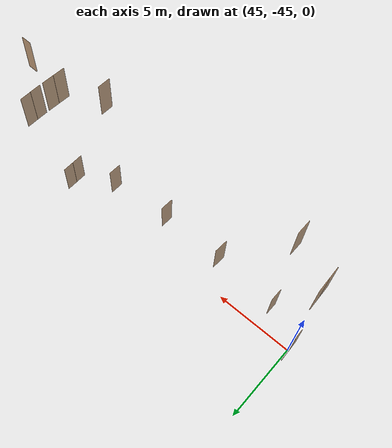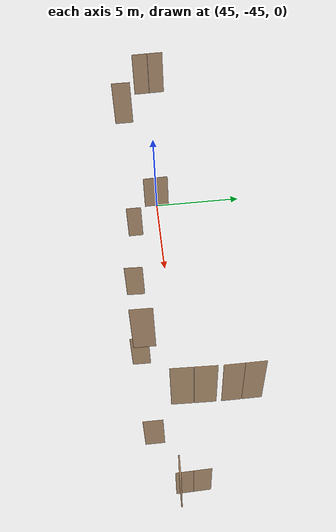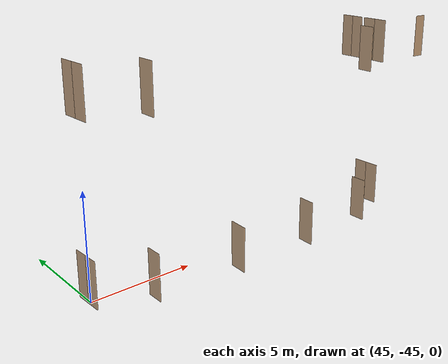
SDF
<sdf version="1.7">
 <world name="sim_world">
  <model name="bano01">
   <pose>47.27149607737123 -46.41799548548202 0.0 0 0 1.5707963267948966</pose>
   <link name="right">
    <pose>0 0 1.11 0 0 0</pose>
    <visual name="right_visual">
     <geometry><box><size>0.8199446803225976 0.03 2.2</size></box></geometry>
     <material>
      <ambient>0.5 0.25 0 0.6</ambient>
      <diffuse>0.5 0.25 0 0.6</diffuse>
      <pbr><metal><metalness>0.0</metalness></metal></pbr>
     </material>
    </visual>
    <collision name="right_collision">
     <geometry><box><size>0.8199446803225976 0.03 2.2</size></box></geometry>
     <surface><contact><collide_bitmask>0x02</collide_bitmask></contact></surface>
    </collision>
    <inertial>
     <mass>50.0</mass>
     <inertia><ixx>20.17041666666667</ixx><iyy>22.967955328288866</iyy><izz>2.805038661622195</izz></inertia>
    </inertial>
   </link>
   <joint name="right_joint" type="revolute">
    <parent>world</parent>
    <child>right</child>
    <axis><xyz>0 0 -1</xyz><limit><lower>0</lower><upper>1.57</upper></limit></axis>
    <pose>0.4149723401612988 0 0 0 0 0</pose>
   </joint>
   <plugin name="register_component" filename="libregister_component.so">
    <component name="Door">
     <v_max_door>0.5</v_max_door>
     <a_max_door>0.3</a_max_door>
     <a_nom_door>0.15</a_nom_door>
     <dx_min_door>0.01</dx_min_door>
     <f_max_door>500.0</f_max_door>
     <ros_interface>true</ros_interface>
     <door name="bano01" type="SwingDoor" left_joint_name="empty_joint" right_joint_name="right_joint"/>
    </component>
   </plugin>
  </model>
  <model name="TD0008CW">
   <pose>55.8966070053002 -46.72136061243229 0.0 0 0 1.5301015660938087</pose>
   <link name="right">
    <pose>0 0 1.11 0 0 0</pose>
    <visual name="right_visual">
     <geometry><box><size>0.8644361759346737 0.03 2.2</size></box></geometry>
     <material>
      <ambient>0.5 0.25 0 0.6</ambient>
      <diffuse>0.5 0.25 0 0.6</diffuse>
      <pbr><metal><metalness>0.0</metalness></metal></pbr>
     </material>
    </visual>
    <collision name="right_collision">
     <geometry><box><size>0.8644361759346737 0.03 2.2</size></box></geometry>
     <surface><contact><collide_bitmask>0x02</collide_bitmask></contact></surface>
    </collision>
    <inertial>
     <mass>50.0</mass>
     <inertia><ixx>20.17041666666667</ixx><iyy>23.280207926102346</iyy><izz>3.117291259435676</izz></inertia>
    </inertial>
   </link>
   <joint name="right_joint" type="revolute">
    <parent>world</parent>
    <child>right</child>
    <axis><xyz>0 0 1</xyz><limit><lower>0</lower><upper>1.57</upper></limit></axis>
    <pose>0.43721808796733685 0 0 0 0 0</pose>
   </joint>
   <plugin name="register_component" filename="libregister_component.so">
    <component name="Door">
     <v_max_door>0.5</v_max_door>
     <a_max_door>0.3</a_max_door>
     <a_nom_door>0.15</a_nom_door>
     <dx_min_door>0.01</dx_min_door>
     <f_max_door>500.0</f_max_door>
     <ros_interface>true</ros_interface>
     <door name="TD0008CW" type="SwingDoor" left_joint_name="empty_joint" right_joint_name="right_joint"/>
    </component>
   </plugin>
  </model>
  <model name="TD0007CW">
   <pose>51.58219422672672 -46.71441391912132 0.0 0 0 1.5172743729555838</pose>
   <link name="right">
    <pose>0 0 1.11 0 0 0</pose>
    <visual name="right_visual">
     <geometry><box><size>0.9398812216442772 0.03 2.2</size></box></geometry>
     <material>
      <ambient>0.5 0.25 0 0.6</ambient>
      <diffuse>0.5 0.25 0 0.6</diffuse>
      <pbr><metal><metalness>0.0</metalness></metal></pbr>
     </material>
    </visual>
    <collision name="right_collision">
     <geometry><box><size>0.9398812216442772 0.03 2.2</size></box></geometry>
     <surface><contact><collide_bitmask>0x02</collide_bitmask></contact></surface>
    </collision>
    <inertial>
     <mass>50.0</mass>
     <inertia><ixx>20.17041666666667</ixx><iyy>23.847402961664752</iyy><izz>3.6844862949980794</izz></inertia>
    </inertial>
   </link>
   <joint name="right_joint" type="revolute">
    <parent>world</parent>
    <child>right</child>
    <axis><xyz>0 0 -1</xyz><limit><lower>0</lower><upper>1.57</upper></limit></axis>
    <pose>0.4749406108221386 0 0 0 0 0</pose>
   </joint>
   <plugin name="register_component" filename="libregister_component.so">
    <component name="Door">
     <v_max_door>0.5</v_max_door>
     <a_max_door>0.3</a_max_door>
     <a_nom_door>0.15</a_nom_door>
     <dx_min_door>0.01</dx_min_door>
     <f_max_door>500.0</f_max_door>
     <ros_interface>true</ros_interface>
     <door name="TD0007CW" type="SwingDoor" left_joint_name="empty_joint" right_joint_name="right_joint"/>
    </component>
   </plugin>
  </model>
  <model name="TD1001CP2">
   <pose>44.922773056907744 -44.991499308662824 0.0 0 0 -1.5348843775082168</pose>
   <link name="right">
    <pose>0.3594509958894393 0 1.11 0 0 0</pose>
    <visual name="right_visual">
     <geometry><box><size>0.7089019917788786 0.03 2.2</size></box></geometry>
     <material>
      <ambient>0.5 0.25 0 0.6</ambient>
      <diffuse>0.5 0.25 0 0.6</diffuse>
      <pbr><metal><metalness>0.0</metalness></metal></pbr>
     </material>
    </visual>
    <collision name="right_collision">
     <geometry><box><size>0.7089019917788786 0.03 2.2</size></box></geometry>
     <surface><contact><collide_bitmask>0x02</collide_bitmask></contact></surface>
    </collision>
    <inertial>
     <mass>50.0</mass>
     <inertia><ixx>20.17041666666667</ixx><iyy>22.260591808116928</iyy><izz>2.0976751414502552</izz></inertia>
    </inertial>
   </link>
   <joint name="right_joint" type="revolute">
    <parent>world</parent>
    <child>right</child>
    <axis><xyz>0 0 -1</xyz><limit><lower>0</lower><upper>1.57</upper></limit></axis>
    <pose>0.3594509958894393 0 0 0 0 0</pose>
   </joint>
   <link name="left">
    <pose>-0.3594509958894393 0 1.11 0 0 0</pose>
    <visual name="left_visual">
     <geometry><box><size>0.7089019917788786 0.03 2.2</size></box></geometry>
     <material>
      <ambient>0.5 0.25 0 0.6</ambient>
      <diffuse>0.5 0.25 0 0.6</diffuse>
      <pbr><metal><metalness>0.0</metalness></metal></pbr>
     </material>
    </visual>
    <collision name="left_collision">
     <geometry><box><size>0.7089019917788786 0.03 2.2</size></box></geometry>
     <surface><contact><collide_bitmask>0x02</collide_bitmask></contact></surface>
    </collision>
    <inertial>
     <mass>50.0</mass>
     <inertia><ixx>20.17041666666667</ixx><iyy>22.260591808116928</iyy><izz>2.0976751414502552</izz></inertia>
    </inertial>
   </link>
   <joint name="left_joint" type="revolute">
    <parent>world</parent>
    <child>left</child>
    <axis><xyz>0 0 -1</xyz><limit><lower>-1.57</lower><upper>0</upper></limit></axis>
    <pose>-0.3594509958894393 0 0 0 0 0</pose>
   </joint>
   <plugin name="register_component" filename="libregister_component.so">
    <component name="Door">
     <v_max_door>0.5</v_max_door>
     <a_max_door>0.3</a_max_door>
     <a_nom_door>0.15</a_nom_door>
     <dx_min_door>0.01</dx_min_door>
     <f_max_door>500.0</f_max_door>
     <ros_interface>true</ros_interface>
     <door name="TD1001CP2" type="DoubleSwingDoor" left_joint_name="left_joint" right_joint_name="right_joint"/>
    </component>
   </plugin>
  </model>
  <model name="TD0013CP2">
   <pose>62.40023819685919 -45.00493257504931 0.0 0 0 1.5720618208057906</pose>
   <link name="right">
    <pose>0.36802353716743 0 1.11 0 0 0</pose>
    <visual name="right_visual">
     <geometry><box><size>0.72604707433486 0.03 2.2</size></box></geometry>
     <material>
      <ambient>0.5 0.25 0 0.6</ambient>
      <diffuse>0.5 0.25 0 0.6</diffuse>
      <pbr><metal><metalness>0.0</metalness></metal></pbr>
     </material>
    </visual>
    <collision name="right_collision">
     <geometry><box><size>0.72604707433486 0.03 2.2</size></box></geometry>
     <surface><contact><collide_bitmask>0x02</collide_bitmask></contact></surface>
    </collision>
    <inertial>
     <mass>50.0</mass>
     <inertia><ixx>20.17041666666667</ixx><iyy>22.36310147562588</iyy><izz>2.2001848089592078</izz></inertia>
    </inertial>
   </link>
   <joint name="right_joint" type="revolute">
    <parent>world</parent>
    <child>right</child>
    <axis><xyz>0 0 -1</xyz><limit><lower>0</lower><upper>1.57</upper></limit></axis>
    <pose>0.36802353716743 0 0 0 0 0</pose>
   </joint>
   <link name="left">
    <pose>-0.36802353716743 0 1.11 0 0 0</pose>
    <visual name="left_visual">
     <geometry><box><size>0.72604707433486 0.03 2.2</size></box></geometry>
     <material>
      <ambient>0.5 0.25 0 0.6</ambient>
      <diffuse>0.5 0.25 0 0.6</diffuse>
      <pbr><metal><metalness>0.0</metalness></metal></pbr>
     </material>
    </visual>
    <collision name="left_collision">
     <geometry><box><size>0.72604707433486 0.03 2.2</size></box></geometry>
     <surface><contact><collide_bitmask>0x02</collide_bitmask></contact></surface>
    </collision>
    <inertial>
     <mass>50.0</mass>
     <inertia><ixx>20.17041666666667</ixx><iyy>22.36310147562588</iyy><izz>2.2001848089592078</izz></inertia>
    </inertial>
   </link>
   <joint name="left_joint" type="revolute">
    <parent>world</parent>
    <child>left</child>
    <axis><xyz>0 0 -1</xyz><limit><lower>-1.57</lower><upper>0</upper></limit></axis>
    <pose>-0.36802353716743 0 0 0 0 0</pose>
   </joint>
   <plugin name="register_component" filename="libregister_component.so">
    <component name="Door">
     <v_max_door>0.5</v_max_door>
     <a_max_door>0.3</a_max_door>
     <a_nom_door>0.15</a_nom_door>
     <dx_min_door>0.01</dx_min_door>
     <f_max_door>500.0</f_max_door>
     <ros_interface>true</ros_interface>
     <door name="TD0013CP2" type="DoubleSwingDoor" left_joint_name="left_joint" right_joint_name="right_joint"/>
    </component>
   </plugin>
  </model>
  <model name="bano07">
   <pose>60.06898852289842 -46.43233776989466 0.0 0 0 1.54727733475389</pose>
   <link name="right">
    <pose>0 0 1.11 0 0 0</pose>
    <visual name="right_visual">
     <geometry><box><size>0.8585207486559601 0.03 2.2</size></box></geometry>
     <material>
      <ambient>0.5 0.25 0 0.6</ambient>
      <diffuse>0.5 0.25 0 0.6</diffuse>
      <pbr><metal><metalness>0.0</metalness></metal></pbr>
     </material>
    </visual>
    <collision name="right_collision">
     <geometry><box><size>0.8585207486559601 0.03 2.2</size></box></geometry>
     <surface><contact><collide_bitmask>0x02</collide_bitmask></contact></surface>
    </collision>
    <inertial>
     <mass>50.0</mass>
     <inertia><ixx>20.17041666666667</ixx><iyy>23.237741149469965</iyy><izz>3.0748244828032925</izz></inertia>
    </inertial>
   </link>
   <joint name="right_joint" type="revolute">
    <parent>world</parent>
    <child>right</child>
    <axis><xyz>0 0 1</xyz><limit><lower>0</lower><upper>1.57</upper></limit></axis>
    <pose>0.43426037432798004 0 0 0 0 0</pose>
   </joint>
   <plugin name="register_component" filename="libregister_component.so">
    <component name="Door">
     <v_max_door>0.5</v_max_door>
     <a_max_door>0.3</a_max_door>
     <a_nom_door>0.15</a_nom_door>
     <dx_min_door>0.01</dx_min_door>
     <f_max_door>500.0</f_max_door>
     <ros_interface>true</ros_interface>
     <door name="bano07" type="SwingDoor" left_joint_name="empty_joint" right_joint_name="right_joint"/>
    </component>
   </plugin>
  </model>
  <model name="TD1118CP4">
   <pose>44.94644914665497 -45.02413210114766 8.0 0 0 -1.5336877245950296</pose>
   <link name="right">
    <pose>0.3714555084669651 0 1.11 0 0 0</pose>
    <visual name="right_visual">
     <geometry><box><size>0.7329110169339302 0.03 2.2</size></box></geometry>
     <material>
      <ambient>0.5 0.25 0 0.6</ambient>
      <diffuse>0.5 0.25 0 0.6</diffuse>
      <pbr><metal><metalness>0.0</metalness></metal></pbr>
     </material>
    </visual>
    <collision name="right_collision">
     <geometry><box><size>0.7329110169339302 0.03 2.2</size></box></geometry>
     <surface><contact><collide_bitmask>0x02</collide_bitmask></contact></surface>
    </collision>
    <inertial>
     <mass>50.0</mass>
     <inertia><ixx>20.17041666666667</ixx><iyy>22.40482732809637</iyy><izz>2.2419106614296993</izz></inertia>
    </inertial>
   </link>
   <joint name="right_joint" type="revolute">
    <parent>world</parent>
    <child>right</child>
    <axis><xyz>0 0 -1</xyz><limit><lower>0</lower><upper>1.57</upper></limit></axis>
    <pose>0.3714555084669651 0 0 0 0 0</pose>
   </joint>
   <link name="left">
    <pose>-0.3714555084669651 0 1.11 0 0 0</pose>
    <visual name="left_visual">
     <geometry><box><size>0.7329110169339302 0.03 2.2</size></box></geometry>
     <material>
      <ambient>0.5 0.25 0 0.6</ambient>
      <diffuse>0.5 0.25 0 0.6</diffuse>
      <pbr><metal><metalness>0.0</metalness></metal></pbr>
     </material>
    </visual>
    <collision name="left_collision">
     <geometry><box><size>0.7329110169339302 0.03 2.2</size></box></geometry>
     <surface><contact><collide_bitmask>0x02</collide_bitmask></contact></surface>
    </collision>
    <inertial>
     <mass>50.0</mass>
     <inertia><ixx>20.17041666666667</ixx><iyy>22.40482732809637</iyy><izz>2.2419106614296993</izz></inertia>
    </inertial>
   </link>
   <joint name="left_joint" type="revolute">
    <parent>world</parent>
    <child>left</child>
    <axis><xyz>0 0 -1</xyz><limit><lower>-1.57</lower><upper>0</upper></limit></axis>
    <pose>-0.3714555084669651 0 0 0 0 0</pose>
   </joint>
   <plugin name="register_component" filename="libregister_component.so">
    <component name="Door">
     <v_max_door>0.5</v_max_door>
     <a_max_door>0.3</a_max_door>
     <a_nom_door>0.15</a_nom_door>
     <dx_min_door>0.01</dx_min_door>
     <f_max_door>500.0</f_max_door>
     <ros_interface>true</ros_interface>
     <door name="TD1118CP4" type="DoubleSwingDoor" left_joint_name="left_joint" right_joint_name="right_joint"/>
    </component>
   </plugin>
  </model>
  <model name="bano1">
   <pose>47.28208015738405 -46.41913130619041 8.0 0 0 1.5764696971908632</pose>
   <link name="right">
    <pose>0 0 1.11 0 0 0</pose>
    <visual name="right_visual">
     <geometry><box><size>0.8397545239237783 0.03 2.2</size></box></geometry>
     <material>
      <ambient>0.5 0.25 0 0.6</ambient>
      <diffuse>0.5 0.25 0 0.6</diffuse>
      <pbr><metal><metalness>0.0</metalness></metal></pbr>
     </material>
    </visual>
    <collision name="right_collision">
     <geometry><box><size>0.8397545239237783 0.03 2.2</size></box></geometry>
     <surface><contact><collide_bitmask>0x02</collide_bitmask></contact></surface>
    </collision>
    <inertial>
     <mass>50.0</mass>
     <inertia><ixx>20.17041666666667</ixx><iyy>23.104948585210217</iyy><izz>2.942031918543548</izz></inertia>
    </inertial>
   </link>
   <joint name="right_joint" type="revolute">
    <parent>world</parent>
    <child>right</child>
    <axis><xyz>0 0 -1</xyz><limit><lower>0</lower><upper>1.57</upper></limit></axis>
    <pose>0.42487726196188913 0 0 0 0 0</pose>
   </joint>
   <plugin name="register_component" filename="libregister_component.so">
    <component name="Door">
     <v_max_door>0.5</v_max_door>
     <a_max_door>0.3</a_max_door>
     <a_nom_door>0.15</a_nom_door>
     <dx_min_door>0.01</dx_min_door>
     <f_max_door>500.0</f_max_door>
     <ros_interface>true</ros_interface>
     <door name="bano1" type="SwingDoor" left_joint_name="empty_joint" right_joint_name="right_joint"/>
    </component>
   </plugin>
  </model>
  <model name="bano7">
   <pose>60.0810335978438 -46.42408954515949 8.0 0 0 1.541245749789117</pose>
   <link name="right">
    <pose>0 0 1.11 0 0 0</pose>
    <visual name="right_visual">
     <geometry><box><size>0.7806089194577953 0.03 2.2</size></box></geometry>
     <material>
      <ambient>0.5 0.25 0 0.6</ambient>
      <diffuse>0.5 0.25 0 0.6</diffuse>
      <pbr><metal><metalness>0.0</metalness></metal></pbr>
     </material>
    </visual>
    <collision name="right_collision">
     <geometry><box><size>0.7806089194577953 0.03 2.2</size></box></geometry>
     <surface><contact><collide_bitmask>0x02</collide_bitmask></contact></surface>
    </collision>
    <inertial>
     <mass>50.0</mass>
     <inertia><ixx>20.17041666666667</ixx><iyy>22.70562618807112</iyy><izz>2.5427095214044453</izz></inertia>
    </inertial>
   </link>
   <joint name="right_joint" type="revolute">
    <parent>world</parent>
    <child>right</child>
    <axis><xyz>0 0 1</xyz><limit><lower>0</lower><upper>1.57</upper></limit></axis>
    <pose>0.39530445972889766 0 0 0 0 0</pose>
   </joint>
   <plugin name="register_component" filename="libregister_component.so">
    <component name="Door">
     <v_max_door>0.5</v_max_door>
     <a_max_door>0.3</a_max_door>
     <a_nom_door>0.15</a_nom_door>
     <dx_min_door>0.01</dx_min_door>
     <f_max_door>500.0</f_max_door>
     <ros_interface>true</ros_interface>
     <door name="bano7" type="SwingDoor" left_joint_name="empty_joint" right_joint_name="right_joint"/>
    </component>
   </plugin>
  </model>
  <model name="TD0121CI">
   <pose>65.33917160585753 -45.769495344585565 8.0 0 0 -0.030342913966224207</pose>
   <link name="right">
    <pose>0 0 1.11 0 0 0</pose>
    <visual name="right_visual">
     <geometry><box><size>0.6424077246111844 0.03 2.2</size></box></geometry>
     <material>
      <ambient>0.5 0.25 0 0.6</ambient>
      <diffuse>0.5 0.25 0 0.6</diffuse>
      <pbr><metal><metalness>0.0</metalness></metal></pbr>
     </material>
    </visual>
    <collision name="right_collision">
     <geometry><box><size>0.6424077246111844 0.03 2.2</size></box></geometry>
     <surface><contact><collide_bitmask>0x02</collide_bitmask></contact></surface>
    </collision>
    <inertial>
     <mass>50.0</mass>
     <inertia><ixx>20.17041666666667</ixx><iyy>21.886198686000505</iyy><izz>1.723282019333831</izz></inertia>
    </inertial>
   </link>
   <joint name="right_joint" type="revolute">
    <parent>world</parent>
    <child>right</child>
    <axis><xyz>0 0 1</xyz><limit><lower>0</lower><upper>1.57</upper></limit></axis>
    <pose>0.32620386230559223 0 0 0 0 0</pose>
   </joint>
   <plugin name="register_component" filename="libregister_component.so">
    <component name="Door">
     <v_max_door>0.5</v_max_door>
     <a_max_door>0.3</a_max_door>
     <a_nom_door>0.15</a_nom_door>
     <dx_min_door>0.01</dx_min_door>
     <f_max_door>500.0</f_max_door>
     <ros_interface>true</ros_interface>
     <door name="TD0121CI" type="SwingDoor" left_joint_name="empty_joint" right_joint_name="right_joint"/>
    </component>
   </plugin>
  </model>
  <model name="TD0119CP2">
   <pose>62.408047540033564 -45.011140276778626 8.0 0 0 1.5193640332775675</pose>
   <link name="right">
    <pose>0.3663535106896813 0 1.11 0 0 0</pose>
    <visual name="right_visual">
     <geometry><box><size>0.7227070213793626 0.03 2.2</size></box></geometry>
     <material>
      <ambient>0.5 0.25 0 0.6</ambient>
      <diffuse>0.5 0.25 0 0.6</diffuse>
      <pbr><metal><metalness>0.0</metalness></metal></pbr>
     </material>
    </visual>
    <collision name="right_collision">
     <geometry><box><size>0.7227070213793626 0.03 2.2</size></box></geometry>
     <surface><contact><collide_bitmask>0x02</collide_bitmask></contact></surface>
    </collision>
    <inertial>
     <mass>50.0</mass>
     <inertia><ixx>20.17041666666667</ixx><iyy>22.342939328129297</iyy><izz>2.1800226614626275</izz></inertia>
    </inertial>
   </link>
   <joint name="right_joint" type="revolute">
    <parent>world</parent>
    <child>right</child>
    <axis><xyz>0 0 -1</xyz><limit><lower>0</lower><upper>1.57</upper></limit></axis>
    <pose>0.3663535106896813 0 0 0 0 0</pose>
   </joint>
   <link name="left">
    <pose>-0.3663535106896813 0 1.11 0 0 0</pose>
    <visual name="left_visual">
     <geometry><box><size>0.7227070213793626 0.03 2.2</size></box></geometry>
     <material>
      <ambient>0.5 0.25 0 0.6</ambient>
      <diffuse>0.5 0.25 0 0.6</diffuse>
      <pbr><metal><metalness>0.0</metalness></metal></pbr>
     </material>
    </visual>
    <collision name="left_collision">
     <geometry><box><size>0.7227070213793626 0.03 2.2</size></box></geometry>
     <surface><contact><collide_bitmask>0x02</collide_bitmask></contact></surface>
    </collision>
    <inertial>
     <mass>50.0</mass>
     <inertia><ixx>20.17041666666667</ixx><iyy>22.342939328129297</iyy><izz>2.1800226614626275</izz></inertia>
    </inertial>
   </link>
   <joint name="left_joint" type="revolute">
    <parent>world</parent>
    <child>left</child>
    <axis><xyz>0 0 -1</xyz><limit><lower>-1.57</lower><upper>0</upper></limit></axis>
    <pose>-0.3663535106896813 0 0 0 0 0</pose>
   </joint>
   <plugin name="register_component" filename="libregister_component.so">
    <component name="Door">
     <v_max_door>0.5</v_max_door>
     <a_max_door>0.3</a_max_door>
     <a_nom_door>0.15</a_nom_door>
     <dx_min_door>0.01</dx_min_door>
     <f_max_door>500.0</f_max_door>
     <ros_interface>true</ros_interface>
     <door name="TD0119CP2" type="DoubleSwingDoor" left_joint_name="left_joint" right_joint_name="right_joint"/>
    </component>
   </plugin>
  </model>
  <model name="TD0119CP1">
   <pose>62.46754225161837 -43.451754707434986 8.0 0 0 1.5541844441469093</pose>
   <link name="right">
    <pose>0.33220970809886047 0 1.11 0 0 0</pose>
    <visual name="right_visual">
     <geometry><box><size>0.6544194161977209 0.03 2.2</size></box></geometry>
     <material>
      <ambient>0.5 0.25 0 0.6</ambient>
      <diffuse>0.5 0.25 0 0.6</diffuse>
      <pbr><metal><metalness>0.0</metalness></metal></pbr>
     </material>
    </visual>
    <collision name="right_collision">
     <geometry><box><size>0.6544194161977209 0.03 2.2</size></box></geometry>
     <surface><contact><collide_bitmask>0x02</collide_bitmask></contact></surface>
    </collision>
    <inertial>
     <mass>50.0</mass>
     <inertia><ixx>20.17041666666667</ixx><iyy>21.95110321790236</iyy><izz>1.7881865512356914</izz></inertia>
    </inertial>
   </link>
   <joint name="right_joint" type="revolute">
    <parent>world</parent>
    <child>right</child>
    <axis><xyz>0 0 -1</xyz><limit><lower>0</lower><upper>1.57</upper></limit></axis>
    <pose>0.33220970809886047 0 0 0 0 0</pose>
   </joint>
   <link name="left">
    <pose>-0.33220970809886047 0 1.11 0 0 0</pose>
    <visual name="left_visual">
     <geometry><box><size>0.6544194161977209 0.03 2.2</size></box></geometry>
     <material>
      <ambient>0.5 0.25 0 0.6</ambient>
      <diffuse>0.5 0.25 0 0.6</diffuse>
      <pbr><metal><metalness>0.0</metalness></metal></pbr>
     </material>
    </visual>
    <collision name="left_collision">
     <geometry><box><size>0.6544194161977209 0.03 2.2</size></box></geometry>
     <surface><contact><collide_bitmask>0x02</collide_bitmask></contact></surface>
    </collision>
    <inertial>
     <mass>50.0</mass>
     <inertia><ixx>20.17041666666667</ixx><iyy>21.95110321790236</iyy><izz>1.7881865512356914</izz></inertia>
    </inertial>
   </link>
   <joint name="left_joint" type="revolute">
    <parent>world</parent>
    <child>left</child>
    <axis><xyz>0 0 -1</xyz><limit><lower>-1.57</lower><upper>0</upper></limit></axis>
    <pose>-0.33220970809886047 0 0 0 0 0</pose>
   </joint>
   <plugin name="register_component" filename="libregister_component.so">
    <component name="Door">
     <v_max_door>0.5</v_max_door>
     <a_max_door>0.3</a_max_door>
     <a_nom_door>0.15</a_nom_door>
     <dx_min_door>0.01</dx_min_door>
     <f_max_door>500.0</f_max_door>
     <ros_interface>true</ros_interface>
     <door name="TD0119CP1" type="DoubleSwingDoor" left_joint_name="left_joint" right_joint_name="right_joint"/>
    </component>
   </plugin>
  </model>
 </world>
</sdf>
